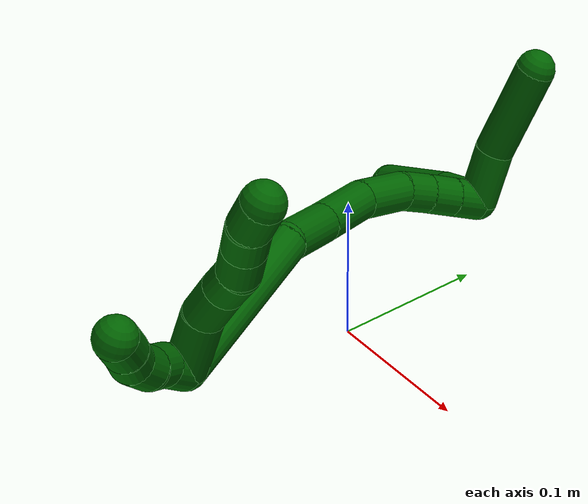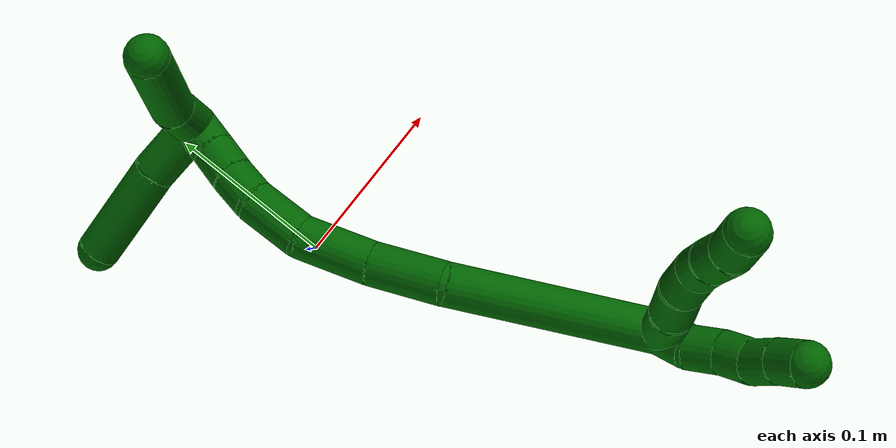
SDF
<sdf version="1.7">
 <world name="default">
  <model name="6">
   <static>0</static>
   <link name="6">
    <collision name="collision-cylinder-e_1_2_8">
     <pose>0.000624 -0.002665 0.020911 0.126756 0.029604 0.001879</pose>
     <geometry><cylinder><radius>0.0125</radius><length>0.042179</length></cylinder></geometry>
     <surface>
      <friction><ode><mu>1.16</mu><mu2>1.16</mu2><slip1>0</slip1><slip2>0</slip2></ode></friction>
      <contact><ode><kp>1e+06</kp><kd>1</kd><max_vel>0</max_vel><min_depth>0.001</min_depth></ode></contact>
     </surface>
    </collision>
    <visual name="visual-cylinder-e_1_2_8">
     <pose>0.000624 -0.002665 0.020911 0.126756 0.029604 0.001879</pose>
     <geometry><cylinder><radius>0.0125</radius><length>0.042179</length></cylinder></geometry>
     <material><ambient>0 0.392157 0.003922 1</ambient></material>
    </visual>
    <collision name="collision-cylinder-e_2_8_9">
     <pose>0.004469 -0.005731 0.053672 0.03389 0.265206 0.004521</pose>
     <geometry><cylinder><radius>0.0125</radius><length>0.024573</length></cylinder></geometry>
     <surface>
      <friction><ode><mu>1.16</mu><mu2>1.16</mu2><slip1>0</slip1><slip2>0</slip2></ode></friction>
      <contact><ode><kp>1e+06</kp><kd>1</kd><max_vel>0</max_vel><min_depth>0.001</min_depth></ode></contact>
     </surface>
    </collision>
    <visual name="visual-cylinder-e_2_8_9">
     <pose>0.004469 -0.005731 0.053672 0.03389 0.265206 0.004521</pose>
     <geometry><cylinder><radius>0.0125</radius><length>0.024573</length></cylinder></geometry>
     <material><ambient>0 0.392157 0.003922 1</ambient></material>
    </visual>
    <collision name="collision-cylinder-e_3_9_10">
     <pose>0.011656 -0.008137 0.074891 0.210648 0.392547 0.042033</pose>
     <geometry><cylinder><radius>0.0125</radius><length>0.020739</length></cylinder></geometry>
     <surface>
      <friction><ode><mu>1.16</mu><mu2>1.16</mu2><slip1>0</slip1><slip2>0</slip2></ode></friction>
      <contact><ode><kp>1e+06</kp><kd>1</kd><max_vel>0</max_vel><min_depth>0.001</min_depth></ode></contact>
     </surface>
    </collision>
    <visual name="visual-cylinder-e_3_9_10">
     <pose>0.011656 -0.008137 0.074891 0.210648 0.392547 0.042033</pose>
     <geometry><cylinder><radius>0.0125</radius><length>0.020739</length></cylinder></geometry>
     <material><ambient>0 0.392157 0.003922 1</ambient></material>
    </visual>
    <collision name="collision-cylinder-e_4_10_11">
     <pose>0.016606 -0.013225 0.094001 0.306715 0.095958 0.014843</pose>
     <geometry><cylinder><radius>0.0125</radius><length>0.020529</length></cylinder></geometry>
     <surface>
      <friction><ode><mu>1.16</mu><mu2>1.16</mu2><slip1>0</slip1><slip2>0</slip2></ode></friction>
      <contact><ode><kp>1e+06</kp><kd>1</kd><max_vel>0</max_vel><min_depth>0.001</min_depth></ode></contact>
     </surface>
    </collision>
    <visual name="visual-cylinder-e_4_10_11">
     <pose>0.016606 -0.013225 0.094001 0.306715 0.095958 0.014843</pose>
     <geometry><cylinder><radius>0.0125</radius><length>0.020529</length></cylinder></geometry>
     <material><ambient>0 0.392157 0.003922 1</ambient></material>
    </visual>
    <collision name="collision-cylinder-e_5_11_12">
     <pose>0.019376 -0.020329 0.113148 0.403819 0.172901 0.035477</pose>
     <geometry><cylinder><radius>0.0125</radius><length>0.020768</length></cylinder></geometry>
     <surface>
      <friction><ode><mu>1.16</mu><mu2>1.16</mu2><slip1>0</slip1><slip2>0</slip2></ode></friction>
      <contact><ode><kp>1e+06</kp><kd>1</kd><max_vel>0</max_vel><min_depth>0.001</min_depth></ode></contact>
     </surface>
    </collision>
    <visual name="visual-cylinder-e_5_11_12">
     <pose>0.019376 -0.020329 0.113148 0.403819 0.172901 0.035477</pose>
     <geometry><cylinder><radius>0.0125</radius><length>0.020768</length></cylinder></geometry>
     <material><ambient>0 0.392157 0.003922 1</ambient></material>
    </visual>
    <collision name="collision-cylinder-e_6_12_6">
     <pose>0.023832 -0.026321 0.132627 0.193389 0.254408 0.024809</pose>
     <geometry><cylinder><radius>0.0125</radius><length>0.021212</length></cylinder></geometry>
     <surface>
      <friction><ode><mu>1.16</mu><mu2>1.16</mu2><slip1>0</slip1><slip2>0</slip2></ode></friction>
      <contact><ode><kp>1e+06</kp><kd>1</kd><max_vel>0</max_vel><min_depth>0.001</min_depth></ode></contact>
     </surface>
    </collision>
    <visual name="visual-cylinder-e_6_12_6">
     <pose>0.023832 -0.026321 0.132627 0.193389 0.254408 0.024809</pose>
     <geometry><cylinder><radius>0.0125</radius><length>0.021212</length></cylinder></geometry>
     <material><ambient>0 0.392157 0.003922 1</ambient></material>
    </visual>
    <collision name="collision-cylinder-e_1_2_13">
     <pose>-0.000319 -0.009182 0.003948 1.1647 -0.031872 -0.02099</pose>
     <geometry><cylinder><radius>0.0125</radius><length>0.02</length></cylinder></geometry>
     <surface>
      <friction><ode><mu>1.16</mu><mu2>1.16</mu2><slip1>0</slip1><slip2>0</slip2></ode></friction>
      <contact><ode><kp>1e+06</kp><kd>1</kd><max_vel>0</max_vel><min_depth>0.001</min_depth></ode></contact>
     </surface>
    </collision>
    <visual name="visual-cylinder-e_1_2_13">
     <pose>-0.000319 -0.009182 0.003948 1.1647 -0.031872 -0.02099</pose>
     <geometry><cylinder><radius>0.0125</radius><length>0.02</length></cylinder></geometry>
     <material><ambient>0 0.392157 0.003922 1</ambient></material>
    </visual>
    <collision name="collision-cylinder-e_2_13_14">
     <pose>0.002159 -0.027186 0.011685 1.1652 0.283388 0.187431</pose>
     <geometry><cylinder><radius>0.0125</radius><length>0.02</length></cylinder></geometry>
     <surface>
      <friction><ode><mu>1.16</mu><mu2>1.16</mu2><slip1>0</slip1><slip2>0</slip2></ode></friction>
      <contact><ode><kp>1e+06</kp><kd>1</kd><max_vel>0</max_vel><min_depth>0.001</min_depth></ode></contact>
     </surface>
    </collision>
    <visual name="visual-cylinder-e_2_13_14">
     <pose>0.002159 -0.027186 0.011685 1.1652 0.283388 0.187431</pose>
     <geometry><cylinder><radius>0.0125</radius><length>0.02</length></cylinder></geometry>
     <material><ambient>0 0.392157 0.003922 1</ambient></material>
    </visual>
    <collision name="collision-cylinder-e_3_14_15">
     <pose>0.005508 -0.044437 0.020826 1.00494 0.055327 0.030408</pose>
     <geometry><cylinder><radius>0.0125</radius><length>0.02</length></cylinder></geometry>
     <surface>
      <friction><ode><mu>1.16</mu><mu2>1.16</mu2><slip1>0</slip1><slip2>0</slip2></ode></friction>
      <contact><ode><kp>1e+06</kp><kd>1</kd><max_vel>0</max_vel><min_depth>0.001</min_depth></ode></contact>
     </surface>
    </collision>
    <visual name="visual-cylinder-e_3_14_15">
     <pose>0.005508 -0.044437 0.020826 1.00494 0.055327 0.030408</pose>
     <geometry><cylinder><radius>0.0125</radius><length>0.02</length></cylinder></geometry>
     <material><ambient>0 0.392157 0.003922 1</ambient></material>
    </visual>
    <collision name="collision-cylinder-e_4_15_16">
     <pose>0.008009 -0.059219 0.033652 0.704705 0.196106 0.072308</pose>
     <geometry><cylinder><radius>0.0125</radius><length>0.02</length></cylinder></geometry>
     <surface>
      <friction><ode><mu>1.16</mu><mu2>1.16</mu2><slip1>0</slip1><slip2>0</slip2></ode></friction>
      <contact><ode><kp>1e+06</kp><kd>1</kd><max_vel>0</max_vel><min_depth>0.001</min_depth></ode></contact>
     </surface>
    </collision>
    <visual name="visual-cylinder-e_4_15_16">
     <pose>0.008009 -0.059219 0.033652 0.704705 0.196106 0.072308</pose>
     <geometry><cylinder><radius>0.0125</radius><length>0.02</length></cylinder></geometry>
     <material><ambient>0 0.392157 0.003922 1</ambient></material>
    </visual>
    <collision name="collision-cylinder-e_5_16_5">
     <pose>0.011112 -0.072424 0.048316 0.761051 0.115667 0.046313</pose>
     <geometry><cylinder><radius>0.0125</radius><length>0.02</length></cylinder></geometry>
     <surface>
      <friction><ode><mu>1.16</mu><mu2>1.16</mu2><slip1>0</slip1><slip2>0</slip2></ode></friction>
      <contact><ode><kp>1e+06</kp><kd>1</kd><max_vel>0</max_vel><min_depth>0.001</min_depth></ode></contact>
     </surface>
    </collision>
    <visual name="visual-cylinder-e_5_16_5">
     <pose>0.011112 -0.072424 0.048316 0.761051 0.115667 0.046313</pose>
     <geometry><cylinder><radius>0.0125</radius><length>0.02</length></cylinder></geometry>
     <material><ambient>0 0.392157 0.003922 1</ambient></material>
    </visual>
    <collision name="collision-cylinder-e_1_2_17">
     <pose>-0.024048 0.053549 0.013067 -1.33145 -0.411383 0.324816</pose>
     <geometry><cylinder><radius>0.0125</radius><length>0.120276</length></cylinder></geometry>
     <surface>
      <friction><ode><mu>1.16</mu><mu2>1.16</mu2><slip1>0</slip1><slip2>0</slip2></ode></friction>
      <contact><ode><kp>1e+06</kp><kd>1</kd><max_vel>0</max_vel><min_depth>0.001</min_depth></ode></contact>
     </surface>
    </collision>
    <visual name="visual-cylinder-e_1_2_17">
     <pose>-0.024048 0.053549 0.013067 -1.33145 -0.411383 0.324816</pose>
     <geometry><cylinder><radius>0.0125</radius><length>0.120276</length></cylinder></geometry>
     <material><ambient>0 0.392157 0.003922 1</ambient></material>
    </visual>
    <collision name="collision-cylinder-e_2_17_18">
     <pose>-0.053879 0.127625 0.024075 -1.67079 -0.273356 0.30174</pose>
     <geometry><cylinder><radius>0.0125</radius><length>0.042849</length></cylinder></geometry>
     <surface>
      <friction><ode><mu>1.16</mu><mu2>1.16</mu2><slip1>0</slip1><slip2>0</slip2></ode></friction>
      <contact><ode><kp>1e+06</kp><kd>1</kd><max_vel>0</max_vel><min_depth>0.001</min_depth></ode></contact>
     </surface>
    </collision>
    <visual name="visual-cylinder-e_2_17_18">
     <pose>-0.053879 0.127625 0.024075 -1.67079 -0.273356 0.30174</pose>
     <geometry><cylinder><radius>0.0125</radius><length>0.042849</length></cylinder></geometry>
     <material><ambient>0 0.392157 0.003922 1</ambient></material>
    </visual>
    <collision name="collision-cylinder-e_3_18_19">
     <pose>-0.064322 0.168829 0.022881 -1.52896 -0.221411 0.212406</pose>
     <geometry><cylinder><radius>0.0125</radius><length>0.042428</length></cylinder></geometry>
     <surface>
      <friction><ode><mu>1.16</mu><mu2>1.16</mu2><slip1>0</slip1><slip2>0</slip2></ode></friction>
      <contact><ode><kp>1e+06</kp><kd>1</kd><max_vel>0</max_vel><min_depth>0.001</min_depth></ode></contact>
     </surface>
    </collision>
    <visual name="visual-cylinder-e_3_18_19">
     <pose>-0.064322 0.168829 0.022881 -1.52896 -0.221411 0.212406</pose>
     <geometry><cylinder><radius>0.0125</radius><length>0.042428</length></cylinder></geometry>
     <material><ambient>0 0.392157 0.003922 1</ambient></material>
    </visual>
    <collision name="collision-cylinder-e_4_19_20">
     <pose>-0.067826 0.206427 0.024638 -1.5182 0.068056 -0.06457</pose>
     <geometry><cylinder><radius>0.0125</radius><length>0.033965</length></cylinder></geometry>
     <surface>
      <friction><ode><mu>1.16</mu><mu2>1.16</mu2><slip1>0</slip1><slip2>0</slip2></ode></friction>
      <contact><ode><kp>1e+06</kp><kd>1</kd><max_vel>0</max_vel><min_depth>0.001</min_depth></ode></contact>
     </surface>
    </collision>
    <visual name="visual-cylinder-e_4_19_20">
     <pose>-0.067826 0.206427 0.024638 -1.5182 0.068056 -0.06457</pose>
     <geometry><cylinder><radius>0.0125</radius><length>0.033965</length></cylinder></geometry>
     <material><ambient>0 0.392157 0.003922 1</ambient></material>
    </visual>
    <collision name="collision-cylinder-e_5_20_21">
     <pose>-0.06393 0.233008 0.024624 -1.6641 0.275279 -0.301852</pose>
     <geometry><cylinder><radius>0.0125</radius><length>0.020166</length></cylinder></geometry>
     <surface>
      <friction><ode><mu>1.16</mu><mu2>1.16</mu2><slip1>0</slip1><slip2>0</slip2></ode></friction>
      <contact><ode><kp>1e+06</kp><kd>1</kd><max_vel>0</max_vel><min_depth>0.001</min_depth></ode></contact>
     </surface>
    </collision>
    <visual name="visual-cylinder-e_5_20_21">
     <pose>-0.06393 0.233008 0.024624 -1.6641 0.275279 -0.301852</pose>
     <geometry><cylinder><radius>0.0125</radius><length>0.020166</length></cylinder></geometry>
     <material><ambient>0 0.392157 0.003922 1</ambient></material>
    </visual>
    <collision name="collision-cylinder-e_6_21_22">
     <pose>-0.057838 0.252068 0.022916 -1.65617 0.341348 -0.371142</pose>
     <geometry><cylinder><radius>0.0125</radius><length>0.020023</length></cylinder></geometry>
     <surface>
      <friction><ode><mu>1.16</mu><mu2>1.16</mu2><slip1>0</slip1><slip2>0</slip2></ode></friction>
      <contact><ode><kp>1e+06</kp><kd>1</kd><max_vel>0</max_vel><min_depth>0.001</min_depth></ode></contact>
     </surface>
    </collision>
    <visual name="visual-cylinder-e_6_21_22">
     <pose>-0.057838 0.252068 0.022916 -1.65617 0.341348 -0.371142</pose>
     <geometry><cylinder><radius>0.0125</radius><length>0.020023</length></cylinder></geometry>
     <material><ambient>0 0.392157 0.003922 1</ambient></material>
    </visual>
    <collision name="collision-cylinder-e_7_22_1">
     <pose>-0.051158 0.271012 0.021226 -1.66328 0.3343 -0.366052</pose>
     <geometry><cylinder><radius>0.0125</radius><length>0.020292</length></cylinder></geometry>
     <surface>
      <friction><ode><mu>1.16</mu><mu2>1.16</mu2><slip1>0</slip1><slip2>0</slip2></ode></friction>
      <contact><ode><kp>1e+06</kp><kd>1</kd><max_vel>0</max_vel><min_depth>0.001</min_depth></ode></contact>
     </surface>
    </collision>
    <visual name="visual-cylinder-e_7_22_1">
     <pose>-0.051158 0.271012 0.021226 -1.66328 0.3343 -0.366052</pose>
     <geometry><cylinder><radius>0.0125</radius><length>0.020292</length></cylinder></geometry>
     <material><ambient>0 0.392157 0.003922 1</ambient></material>
    </visual>
    <collision name="collision-cylinder-e_1_1_23">
     <pose>-0.051015 0.28154 0.038409 -0.054431 -0.174318 0.004757</pose>
     <geometry><cylinder><radius>0.0125</radius><length>0.036747</length></cylinder></geometry>
     <surface>
      <friction><ode><mu>1.16</mu><mu2>1.16</mu2><slip1>0</slip1><slip2>0</slip2></ode></friction>
      <contact><ode><kp>1e+06</kp><kd>1</kd><max_vel>0</max_vel><min_depth>0.001</min_depth></ode></contact>
     </surface>
    </collision>
    <visual name="visual-cylinder-e_1_1_23">
     <pose>-0.051015 0.28154 0.038409 -0.054431 -0.174318 0.004757</pose>
     <geometry><cylinder><radius>0.0125</radius><length>0.036747</length></cylinder></geometry>
     <material><ambient>0 0.392157 0.003922 1</ambient></material>
    </visual>
    <collision name="collision-cylinder-e_2_23_4">
     <pose>-0.053869 0.282939 0.088099 -0.013125 0.010528 -6.9e-05</pose>
     <geometry><cylinder><radius>0.0125</radius><length>0.063253</length></cylinder></geometry>
     <surface>
      <friction><ode><mu>1.16</mu><mu2>1.16</mu2><slip1>0</slip1><slip2>0</slip2></ode></friction>
      <contact><ode><kp>1e+06</kp><kd>1</kd><max_vel>0</max_vel><min_depth>0.001</min_depth></ode></contact>
     </surface>
    </collision>
    <visual name="visual-cylinder-e_2_23_4">
     <pose>-0.053869 0.282939 0.088099 -0.013125 0.010528 -6.9e-05</pose>
     <geometry><cylinder><radius>0.0125</radius><length>0.063253</length></cylinder></geometry>
     <material><ambient>0 0.392157 0.003922 1</ambient></material>
    </visual>
    <collision name="collision-cylinder-e_1_1_24">
     <pose>-0.063525 0.28563 0.011114 -2.63874 -0.97987 2.24388</pose>
     <geometry><cylinder><radius>0.0125</radius><length>0.037804</length></cylinder></geometry>
     <surface>
      <friction><ode><mu>1.16</mu><mu2>1.16</mu2><slip1>0</slip1><slip2>0</slip2></ode></friction>
      <contact><ode><kp>1e+06</kp><kd>1</kd><max_vel>0</max_vel><min_depth>0.001</min_depth></ode></contact>
     </surface>
    </collision>
    <visual name="visual-cylinder-e_1_1_24">
     <pose>-0.063525 0.28563 0.011114 -2.63874 -0.97987 2.24388</pose>
     <geometry><cylinder><radius>0.0125</radius><length>0.037804</length></cylinder></geometry>
     <material><ambient>0 0.392157 0.003922 1</ambient></material>
    </visual>
    <collision name="collision-cylinder-e_2_24_3">
     <pose>-0.104303 0.296689 -0.015498 -2.81012 -0.938254 2.50408</pose>
     <geometry><cylinder><radius>0.0125</radius><length>0.062196</length></cylinder></geometry>
     <surface>
      <friction><ode><mu>1.16</mu><mu2>1.16</mu2><slip1>0</slip1><slip2>0</slip2></ode></friction>
      <contact><ode><kp>1e+06</kp><kd>1</kd><max_vel>0</max_vel><min_depth>0.001</min_depth></ode></contact>
     </surface>
    </collision>
    <visual name="visual-cylinder-e_2_24_3">
     <pose>-0.104303 0.296689 -0.015498 -2.81012 -0.938254 2.50408</pose>
     <geometry><cylinder><radius>0.0125</radius><length>0.062196</length></cylinder></geometry>
     <material><ambient>0 0.392157 0.003922 1</ambient></material>
    </visual>
    <collision name="collision-sphere-3">
     <pose>-0.129385 0.302672 -0.032882 0 -0 0</pose>
     <geometry><sphere><radius>0.0125</radius></sphere></geometry>
     <surface>
      <friction><ode><mu>1.16</mu><mu2>1.16</mu2><slip1>0</slip1><slip2>0</slip2></ode></friction>
      <contact><ode><kp>1e+06</kp><kd>1</kd><max_vel>0</max_vel><min_depth>0.001</min_depth></ode></contact>
     </surface>
    </collision>
    <visual name="visual-sphere-3">
     <pose>-0.129385 0.302672 -0.032882 0 -0 0</pose>
     <geometry><sphere><radius>0.0125</radius></sphere></geometry>
     <material><ambient>0 0.392157 0.003922 1</ambient></material>
    </visual>
    <collision name="collision-sphere-24">
     <pose>-0.079222 0.290705 0.001886 0 -0 0</pose>
     <geometry><sphere><radius>0.0125</radius></sphere></geometry>
     <surface>
      <friction><ode><mu>1.16</mu><mu2>1.16</mu2><slip1>0</slip1><slip2>0</slip2></ode></friction>
      <contact><ode><kp>1e+06</kp><kd>1</kd><max_vel>0</max_vel><min_depth>0.001</min_depth></ode></contact>
     </surface>
    </collision>
    <visual name="visual-sphere-24">
     <pose>-0.079222 0.290705 0.001886 0 -0 0</pose>
     <geometry><sphere><radius>0.0125</radius></sphere></geometry>
     <material><ambient>0 0.392157 0.003922 1</ambient></material>
    </visual>
    <collision name="collision-sphere-4">
     <pose>-0.053536 0.283354 0.119722 0 -0 0</pose>
     <geometry><sphere><radius>0.0125</radius></sphere></geometry>
     <surface>
      <friction><ode><mu>1.16</mu><mu2>1.16</mu2><slip1>0</slip1><slip2>0</slip2></ode></friction>
      <contact><ode><kp>1e+06</kp><kd>1</kd><max_vel>0</max_vel><min_depth>0.001</min_depth></ode></contact>
     </surface>
    </collision>
    <visual name="visual-sphere-4">
     <pose>-0.053536 0.283354 0.119722 0 -0 0</pose>
     <geometry><sphere><radius>0.0125</radius></sphere></geometry>
     <material><ambient>0 0.392157 0.003922 1</ambient></material>
    </visual>
    <collision name="collision-sphere-23">
     <pose>-0.054202 0.282524 0.056477 0 -0 0</pose>
     <geometry><sphere><radius>0.0125</radius></sphere></geometry>
     <surface>
      <friction><ode><mu>1.16</mu><mu2>1.16</mu2><slip1>0</slip1><slip2>0</slip2></ode></friction>
      <contact><ode><kp>1e+06</kp><kd>1</kd><max_vel>0</max_vel><min_depth>0.001</min_depth></ode></contact>
     </surface>
    </collision>
    <visual name="visual-sphere-23">
     <pose>-0.054202 0.282524 0.056477 0 -0 0</pose>
     <geometry><sphere><radius>0.0125</radius></sphere></geometry>
     <material><ambient>0 0.392157 0.003922 1</ambient></material>
    </visual>
    <collision name="collision-sphere-1">
     <pose>-0.047829 0.280555 0.020341 0 -0 0</pose>
     <geometry><sphere><radius>0.0125</radius></sphere></geometry>
     <surface>
      <friction><ode><mu>1.16</mu><mu2>1.16</mu2><slip1>0</slip1><slip2>0</slip2></ode></friction>
      <contact><ode><kp>1e+06</kp><kd>1</kd><max_vel>0</max_vel><min_depth>0.001</min_depth></ode></contact>
     </surface>
    </collision>
    <visual name="visual-sphere-1">
     <pose>-0.047829 0.280555 0.020341 0 -0 0</pose>
     <geometry><sphere><radius>0.0125</radius></sphere></geometry>
     <material><ambient>0 0.392157 0.003922 1</ambient></material>
    </visual>
    <collision name="collision-sphere-22">
     <pose>-0.054487 0.261468 0.022111 0 -0 0</pose>
     <geometry><sphere><radius>0.0125</radius></sphere></geometry>
     <surface>
      <friction><ode><mu>1.16</mu><mu2>1.16</mu2><slip1>0</slip1><slip2>0</slip2></ode></friction>
      <contact><ode><kp>1e+06</kp><kd>1</kd><max_vel>0</max_vel><min_depth>0.001</min_depth></ode></contact>
     </surface>
    </collision>
    <visual name="visual-sphere-22">
     <pose>-0.054487 0.261468 0.022111 0 -0 0</pose>
     <geometry><sphere><radius>0.0125</radius></sphere></geometry>
     <material><ambient>0 0.392157 0.003922 1</ambient></material>
    </visual>
    <collision name="collision-sphere-21">
     <pose>-0.06119 0.242669 0.02372 0 -0 0</pose>
     <geometry><sphere><radius>0.0125</radius></sphere></geometry>
     <surface>
      <friction><ode><mu>1.16</mu><mu2>1.16</mu2><slip1>0</slip1><slip2>0</slip2></ode></friction>
      <contact><ode><kp>1e+06</kp><kd>1</kd><max_vel>0</max_vel><min_depth>0.001</min_depth></ode></contact>
     </surface>
    </collision>
    <visual name="visual-sphere-21">
     <pose>-0.06119 0.242669 0.02372 0 -0 0</pose>
     <geometry><sphere><radius>0.0125</radius></sphere></geometry>
     <material><ambient>0 0.392157 0.003922 1</ambient></material>
    </visual>
    <collision name="collision-sphere-12">
     <pose>0.021163 -0.024348 0.122554 0 -0 0</pose>
     <geometry><sphere><radius>0.0125</radius></sphere></geometry>
     <surface>
      <friction><ode><mu>1.16</mu><mu2>1.16</mu2><slip1>0</slip1><slip2>0</slip2></ode></friction>
      <contact><ode><kp>1e+06</kp><kd>1</kd><max_vel>0</max_vel><min_depth>0.001</min_depth></ode></contact>
     </surface>
    </collision>
    <visual name="visual-sphere-12">
     <pose>0.021163 -0.024348 0.122554 0 -0 0</pose>
     <geometry><sphere><radius>0.0125</radius></sphere></geometry>
     <material><ambient>0 0.392157 0.003922 1</ambient></material>
    </visual>
    <collision name="collision-sphere-11">
     <pose>0.01759 -0.01631 0.103742 0 -0 0</pose>
     <geometry><sphere><radius>0.0125</radius></sphere></geometry>
     <surface>
      <friction><ode><mu>1.16</mu><mu2>1.16</mu2><slip1>0</slip1><slip2>0</slip2></ode></friction>
      <contact><ode><kp>1e+06</kp><kd>1</kd><max_vel>0</max_vel><min_depth>0.001</min_depth></ode></contact>
     </surface>
    </collision>
    <visual name="visual-sphere-11">
     <pose>0.01759 -0.01631 0.103742 0 -0 0</pose>
     <geometry><sphere><radius>0.0125</radius></sphere></geometry>
     <material><ambient>0 0.392157 0.003922 1</ambient></material>
    </visual>
    <collision name="collision-sphere-10">
     <pose>0.015623 -0.01014 0.08426 0 -0 0</pose>
     <geometry><sphere><radius>0.0125</radius></sphere></geometry>
     <surface>
      <friction><ode><mu>1.16</mu><mu2>1.16</mu2><slip1>0</slip1><slip2>0</slip2></ode></friction>
      <contact><ode><kp>1e+06</kp><kd>1</kd><max_vel>0</max_vel><min_depth>0.001</min_depth></ode></contact>
     </surface>
    </collision>
    <visual name="visual-sphere-10">
     <pose>0.015623 -0.01014 0.08426 0 -0 0</pose>
     <geometry><sphere><radius>0.0125</radius></sphere></geometry>
     <material><ambient>0 0.392157 0.003922 1</ambient></material>
    </visual>
    <collision name="collision-sphere-9">
     <pose>0.007689 -0.006133 0.065522 0 -0 0</pose>
     <geometry><sphere><radius>0.0125</radius></sphere></geometry>
     <surface>
      <friction><ode><mu>1.16</mu><mu2>1.16</mu2><slip1>0</slip1><slip2>0</slip2></ode></friction>
      <contact><ode><kp>1e+06</kp><kd>1</kd><max_vel>0</max_vel><min_depth>0.001</min_depth></ode></contact>
     </surface>
    </collision>
    <visual name="visual-sphere-9">
     <pose>0.007689 -0.006133 0.065522 0 -0 0</pose>
     <geometry><sphere><radius>0.0125</radius></sphere></geometry>
     <material><ambient>0 0.392157 0.003922 1</ambient></material>
    </visual>
    <collision name="collision-sphere-2">
     <geometry><sphere><radius>0.0125</radius></sphere></geometry>
     <surface>
      <friction><ode><mu>1.16</mu><mu2>1.16</mu2><slip1>0</slip1><slip2>0</slip2></ode></friction>
      <contact><ode><kp>1e+06</kp><kd>1</kd><max_vel>0</max_vel><min_depth>0.001</min_depth></ode></contact>
     </surface>
    </collision>
    <visual name="visual-sphere-2">
     <geometry><sphere><radius>0.0125</radius></sphere></geometry>
     <material><ambient>0 0.392157 0.003922 1</ambient></material>
    </visual>
    <collision name="collision-sphere-19">
     <pose>-0.068981 0.189507 0.023747 0 -0 0</pose>
     <geometry><sphere><radius>0.0125</radius></sphere></geometry>
     <surface>
      <friction><ode><mu>1.16</mu><mu2>1.16</mu2><slip1>0</slip1><slip2>0</slip2></ode></friction>
      <contact><ode><kp>1e+06</kp><kd>1</kd><max_vel>0</max_vel><min_depth>0.001</min_depth></ode></contact>
     </surface>
    </collision>
    <visual name="visual-sphere-19">
     <pose>-0.068981 0.189507 0.023747 0 -0 0</pose>
     <geometry><sphere><radius>0.0125</radius></sphere></geometry>
     <material><ambient>0 0.392157 0.003922 1</ambient></material>
    </visual>
    <collision name="collision-sphere-8">
     <pose>0.001248 -0.00533 0.041822 0 -0 0</pose>
     <geometry><sphere><radius>0.0125</radius></sphere></geometry>
     <surface>
      <friction><ode><mu>1.16</mu><mu2>1.16</mu2><slip1>0</slip1><slip2>0</slip2></ode></friction>
      <contact><ode><kp>1e+06</kp><kd>1</kd><max_vel>0</max_vel><min_depth>0.001</min_depth></ode></contact>
     </surface>
    </collision>
    <visual name="visual-sphere-8">
     <pose>0.001248 -0.00533 0.041822 0 -0 0</pose>
     <geometry><sphere><radius>0.0125</radius></sphere></geometry>
     <material><ambient>0 0.392157 0.003922 1</ambient></material>
    </visual>
    <collision name="collision-sphere-6">
     <pose>0.026501 -0.028294 0.142701 0 -0 0</pose>
     <geometry><sphere><radius>0.0125</radius></sphere></geometry>
     <surface>
      <friction><ode><mu>1.16</mu><mu2>1.16</mu2><slip1>0</slip1><slip2>0</slip2></ode></friction>
      <contact><ode><kp>1e+06</kp><kd>1</kd><max_vel>0</max_vel><min_depth>0.001</min_depth></ode></contact>
     </surface>
    </collision>
    <visual name="visual-sphere-6">
     <pose>0.026501 -0.028294 0.142701 0 -0 0</pose>
     <geometry><sphere><radius>0.0125</radius></sphere></geometry>
     <material><ambient>0 0.392157 0.003922 1</ambient></material>
    </visual>
    <collision name="collision-sphere-13">
     <pose>-0.000637 -0.018364 0.007897 0 -0 0</pose>
     <geometry><sphere><radius>0.0125</radius></sphere></geometry>
     <surface>
      <friction><ode><mu>1.16</mu><mu2>1.16</mu2><slip1>0</slip1><slip2>0</slip2></ode></friction>
      <contact><ode><kp>1e+06</kp><kd>1</kd><max_vel>0</max_vel><min_depth>0.001</min_depth></ode></contact>
     </surface>
    </collision>
    <visual name="visual-sphere-13">
     <pose>-0.000637 -0.018364 0.007897 0 -0 0</pose>
     <geometry><sphere><radius>0.0125</radius></sphere></geometry>
     <material><ambient>0 0.392157 0.003922 1</ambient></material>
    </visual>
    <collision name="collision-sphere-14">
     <pose>0.004955 -0.036008 0.015473 0 -0 0</pose>
     <geometry><sphere><radius>0.0125</radius></sphere></geometry>
     <surface>
      <friction><ode><mu>1.16</mu><mu2>1.16</mu2><slip1>0</slip1><slip2>0</slip2></ode></friction>
      <contact><ode><kp>1e+06</kp><kd>1</kd><max_vel>0</max_vel><min_depth>0.001</min_depth></ode></contact>
     </surface>
    </collision>
    <visual name="visual-sphere-14">
     <pose>0.004955 -0.036008 0.015473 0 -0 0</pose>
     <geometry><sphere><radius>0.0125</radius></sphere></geometry>
     <material><ambient>0 0.392157 0.003922 1</ambient></material>
    </visual>
    <collision name="collision-sphere-15">
     <pose>0.006061 -0.052865 0.02618 0 -0 0</pose>
     <geometry><sphere><radius>0.0125</radius></sphere></geometry>
     <surface>
      <friction><ode><mu>1.16</mu><mu2>1.16</mu2><slip1>0</slip1><slip2>0</slip2></ode></friction>
      <contact><ode><kp>1e+06</kp><kd>1</kd><max_vel>0</max_vel><min_depth>0.001</min_depth></ode></contact>
     </surface>
    </collision>
    <visual name="visual-sphere-15">
     <pose>0.006061 -0.052865 0.02618 0 -0 0</pose>
     <geometry><sphere><radius>0.0125</radius></sphere></geometry>
     <material><ambient>0 0.392157 0.003922 1</ambient></material>
    </visual>
    <collision name="collision-sphere-16">
     <pose>0.009958 -0.065573 0.041124 0 -0 0</pose>
     <geometry><sphere><radius>0.0125</radius></sphere></geometry>
     <surface>
      <friction><ode><mu>1.16</mu><mu2>1.16</mu2><slip1>0</slip1><slip2>0</slip2></ode></friction>
      <contact><ode><kp>1e+06</kp><kd>1</kd><max_vel>0</max_vel><min_depth>0.001</min_depth></ode></contact>
     </surface>
    </collision>
    <visual name="visual-sphere-16">
     <pose>0.009958 -0.065573 0.041124 0 -0 0</pose>
     <geometry><sphere><radius>0.0125</radius></sphere></geometry>
     <material><ambient>0 0.392157 0.003922 1</ambient></material>
    </visual>
    <collision name="collision-sphere-5">
     <pose>0.012266 -0.079274 0.055509 0 -0 0</pose>
     <geometry><sphere><radius>0.0125</radius></sphere></geometry>
     <surface>
      <friction><ode><mu>1.16</mu><mu2>1.16</mu2><slip1>0</slip1><slip2>0</slip2></ode></friction>
      <contact><ode><kp>1e+06</kp><kd>1</kd><max_vel>0</max_vel><min_depth>0.001</min_depth></ode></contact>
     </surface>
    </collision>
    <visual name="visual-sphere-5">
     <pose>0.012266 -0.079274 0.055509 0 -0 0</pose>
     <geometry><sphere><radius>0.0125</radius></sphere></geometry>
     <material><ambient>0 0.392157 0.003922 1</ambient></material>
    </visual>
    <collision name="collision-sphere-17">
     <pose>-0.048096 0.107099 0.026134 0 -0 0</pose>
     <geometry><sphere><radius>0.0125</radius></sphere></geometry>
     <surface>
      <friction><ode><mu>1.16</mu><mu2>1.16</mu2><slip1>0</slip1><slip2>0</slip2></ode></friction>
      <contact><ode><kp>1e+06</kp><kd>1</kd><max_vel>0</max_vel><min_depth>0.001</min_depth></ode></contact>
     </surface>
    </collision>
    <visual name="visual-sphere-17">
     <pose>-0.048096 0.107099 0.026134 0 -0 0</pose>
     <geometry><sphere><radius>0.0125</radius></sphere></geometry>
     <material><ambient>0 0.392157 0.003922 1</ambient></material>
    </visual>
    <collision name="collision-sphere-18">
     <pose>-0.059663 0.148151 0.022016 0 -0 0</pose>
     <geometry><sphere><radius>0.0125</radius></sphere></geometry>
     <surface>
      <friction><ode><mu>1.16</mu><mu2>1.16</mu2><slip1>0</slip1><slip2>0</slip2></ode></friction>
      <contact><ode><kp>1e+06</kp><kd>1</kd><max_vel>0</max_vel><min_depth>0.001</min_depth></ode></contact>
     </surface>
    </collision>
    <visual name="visual-sphere-18">
     <pose>-0.059663 0.148151 0.022016 0 -0 0</pose>
     <geometry><sphere><radius>0.0125</radius></sphere></geometry>
     <material><ambient>0 0.392157 0.003922 1</ambient></material>
    </visual>
    <collision name="collision-sphere-20">
     <pose>-0.066671 0.223347 0.025528 0 -0 0</pose>
     <geometry><sphere><radius>0.0125</radius></sphere></geometry>
     <surface>
      <friction><ode><mu>1.16</mu><mu2>1.16</mu2><slip1>0</slip1><slip2>0</slip2></ode></friction>
      <contact><ode><kp>1e+06</kp><kd>1</kd><max_vel>0</max_vel><min_depth>0.001</min_depth></ode></contact>
     </surface>
    </collision>
    <visual name="visual-sphere-20">
     <pose>-0.066671 0.223347 0.025528 0 -0 0</pose>
     <geometry><sphere><radius>0.0125</radius></sphere></geometry>
     <material><ambient>0 0.392157 0.003922 1</ambient></material>
    </visual>
    <inertial>
     <pose>-0.034312 0.123866 0.033937 0 -0 0</pose>
     <mass>0.75</mass>
     <inertia>
      <ixx>0.000243</ixx>
      <ixy>0</ixy>
      <ixz>0</ixz>
      <iyy>0.000201</iyy>
      <iyz>0</iyz>
      <izz>-5.2e-05</izz>
     </inertia>
    </inertial>
   </link>
   <pose>0.08619 -0.17873 0.11339 -0.270897 0.230209 0.047082</pose>
  </model>
 </world>
</sdf>
